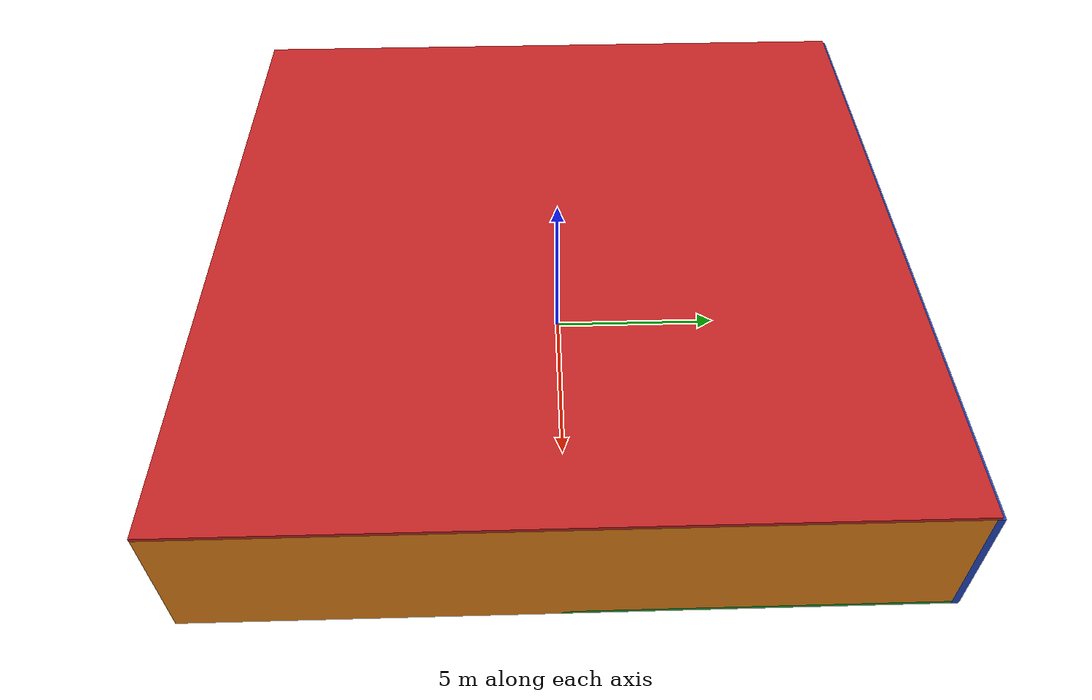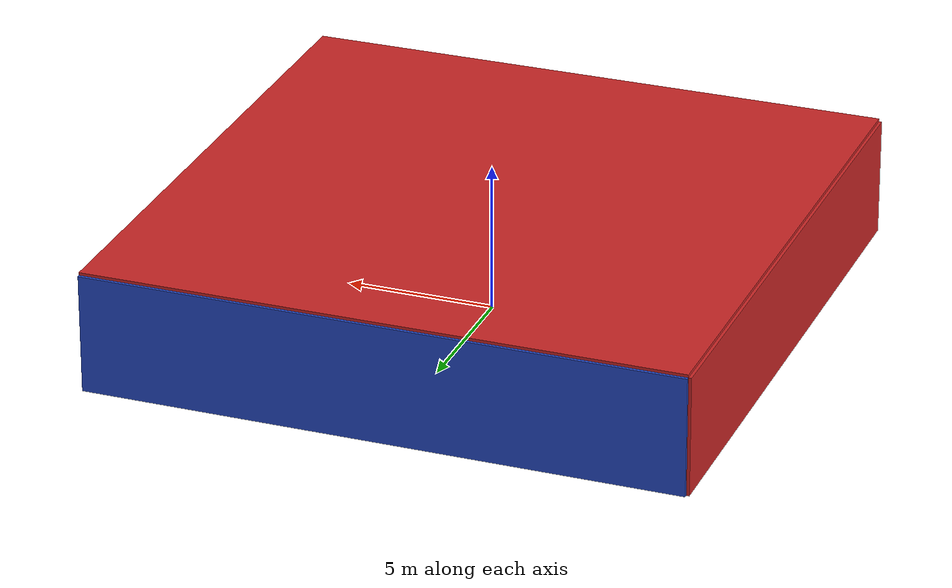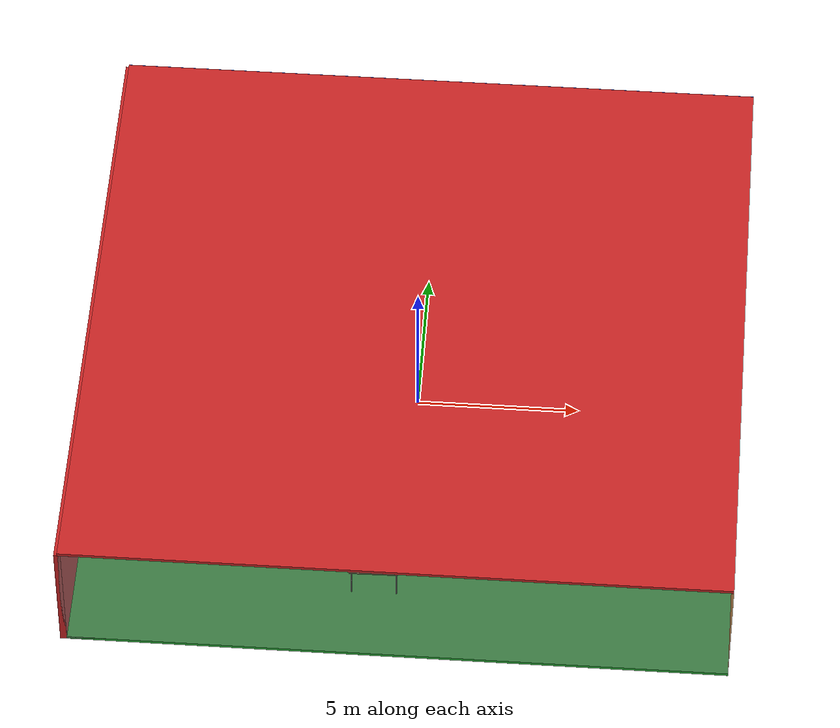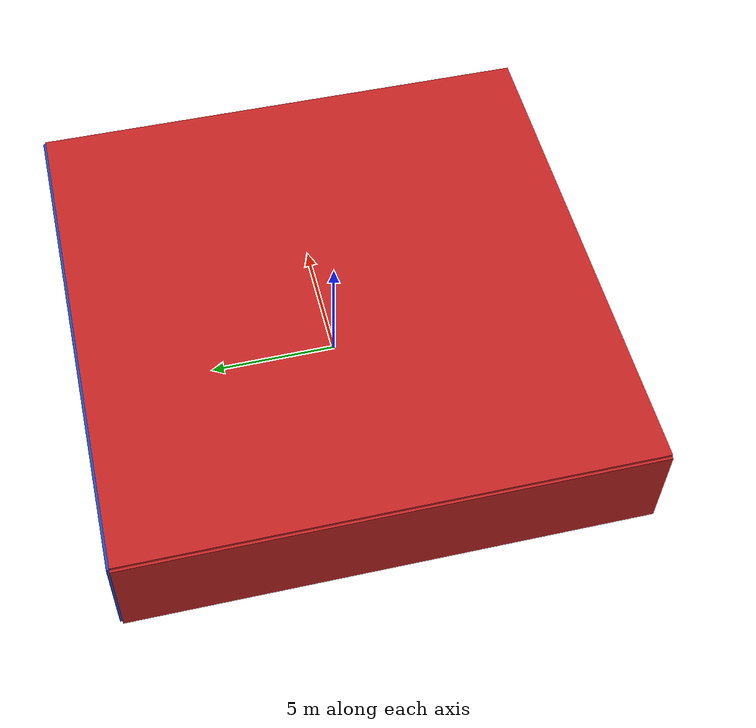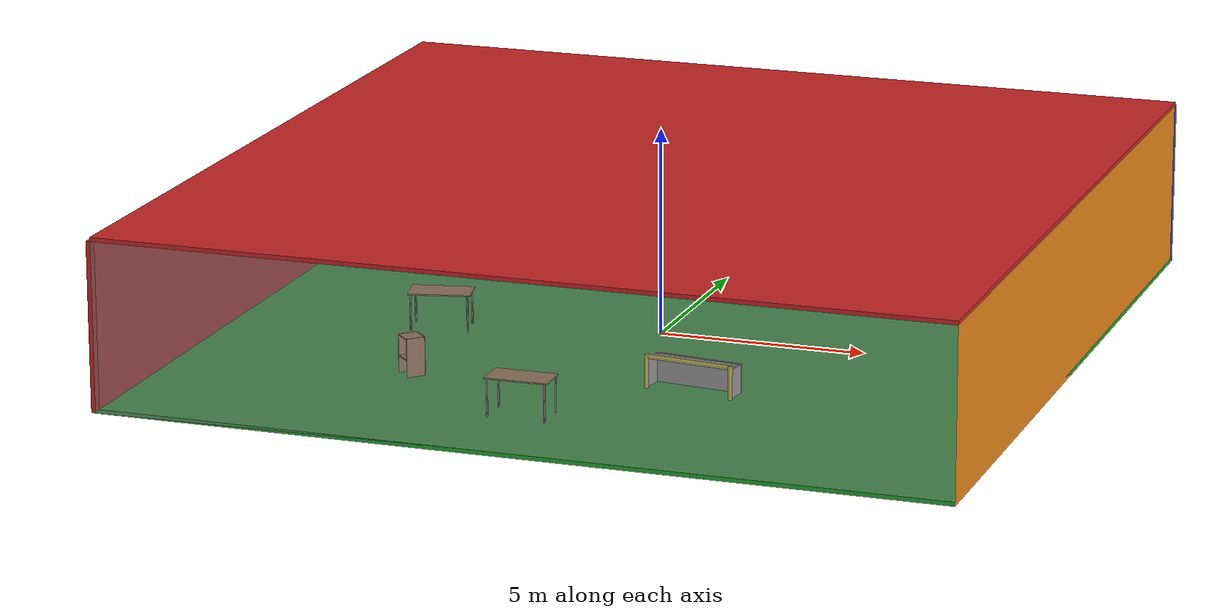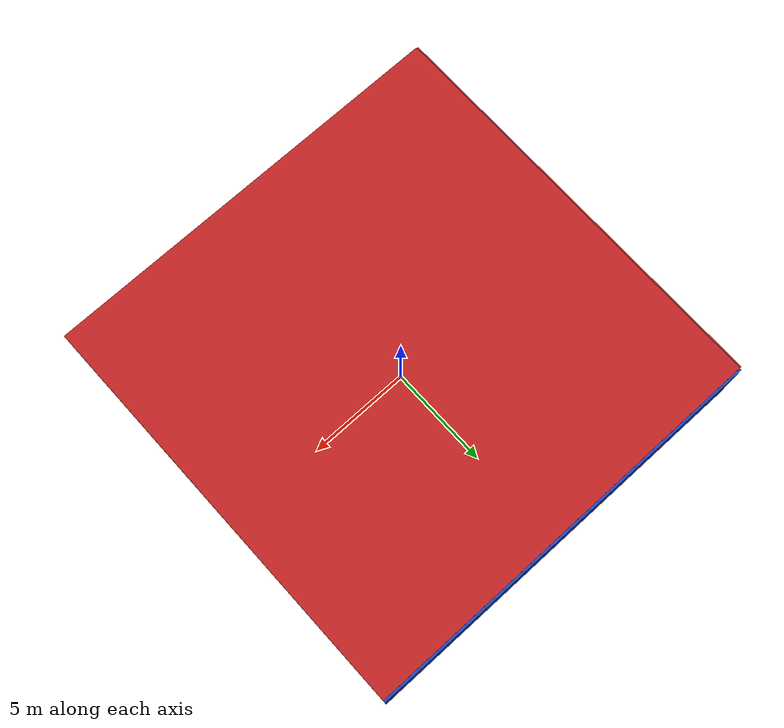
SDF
<sdf version="1.4">
 <world name="default">
  <physics type="ode">
   <max_step_size>0.001</max_step_size>
   <real_time_factor>1</real_time_factor>
   <real_time_update_rate>1000</real_time_update_rate>
   <gravity>0 0 -9.8</gravity>
  </physics>
  <scene><ambient>0.4 0.4 0.4 1</ambient><background>0.7 0.7 0.7 1</background><shadows>1</shadows></scene>
  <model name="Surrounding">
   <static>1</static>
   <link name="Ceiling">
    <collision name="Ceiling_Collision"><geometry><box><size>20 20 0.1</size></box></geometry></collision>
    <visual name="Ceiling_Visual">
     <geometry><box><size>20 20 0.1</size></box></geometry>
     <material>
      <script><uri>file://media/materials/scripts/gazebo.material</uri><name>Gazebo/Red</name></script>
     </material>
    </visual>
    <pose>0 0 4.05 0 0 0</pose>
   </link>
   <link name="Wall_South">
    <collision name="Wall_South_Collision">
     <geometry><box><size>20 0 4</size></box></geometry>
     <pose>0 0 2 0 -0 0</pose>
    </collision>
    <visual name="Wall_South_Visual">
     <pose>0 0 2 0 -0 0</pose>
     <geometry><box><size>20 0 4</size></box></geometry>
     <material>
      <script><uri>file://media/materials/scripts/gazebo.material</uri><name>Gazebo/GreyTransparent</name></script>
     </material>
    </visual>
    <velocity_decay><linear>0</linear><angular>0</angular></velocity_decay>
    <pose>0 -10 0 0 -0 0</pose>
   </link>
   <link name="Wall_East">
    <collision name="Wall_21_Collision">
     <geometry><box><size>20 0 4</size></box></geometry>
     <pose>0 0 2 0 -0 0</pose>
    </collision>
    <visual name="Wall_21_Visual">
     <pose>0 0 2 0 -0 0</pose>
     <geometry><box><size>20 0 4</size></box></geometry>
     <material>
      <script><uri>file://media/materials/scripts/gazebo.material</uri><name>Gazebo/Orange</name></script>
     </material>
    </visual>
    <velocity_decay><linear>0</linear><angular>0</angular></velocity_decay>
    <pose>10 0 0 0 -0 1.5708</pose>
   </link>
   <link name="Wall_North">
    <collision name="Wall_22_Collision">
     <geometry><box><size>20 0.2 4</size></box></geometry>
     <pose>0 0 2 0 -0 0</pose>
    </collision>
    <visual name="Wall_22_Visual">
     <pose>0 0 2 0 -0 0</pose>
     <geometry><box><size>20 0.2 4</size></box></geometry>
     <material>
      <script><uri>file://media/materials/scripts/gazebo.material</uri><name>Gazebo/Blue</name></script>
     </material>
    </visual>
    <velocity_decay><linear>0</linear><angular>0</angular></velocity_decay>
    <pose>0 10 0 0 -0 0</pose>
   </link>
   <link name="Wall_West">
    <collision name="Wall_23_Collision">
     <geometry><box><size>20 0.2 4</size></box></geometry>
     <pose>0 0 2 0 -0 0</pose>
    </collision>
    <visual name="Wall_23_Visual">
     <pose>0 0 2 0 -0 0</pose>
     <geometry><box><size>20 0.2 4</size></box></geometry>
     <material>
      <script><uri>file://media/materials/scripts/gazebo.material</uri><name>Gazebo/RedBright</name></script>
     </material>
    </visual>
    <velocity_decay><linear>0</linear><angular>0</angular></velocity_decay>
    <pose>-10 0 0 0 0 -1.5708</pose>
   </link>
   <link name="Ground_link">
    <collision name="collision">
     <pose>0 0 .05 0 -0 0</pose>
     <geometry><box><size>20 20 0.1</size></box></geometry>
    </collision>
    <visual name="visual">
     <pose>0 0 .05 0 -0 0</pose>
     <geometry><box><size>20 20 0.1</size></box></geometry>
     <material>
      <script><uri>file://media/materials/scripts/gazebo.material</uri><name>Gazebo/Green</name></script>
     </material>
    </visual>
   </link>
   <static>1</static>
  </model>
  <spherical_coordinates>
   <surface_model>EARTH_WGS84</surface_model>
   <latitude_deg>0</latitude_deg>
   <longitude_deg>0</longitude_deg>
   <elevation>0</elevation>
   <heading_deg>0</heading_deg>
  </spherical_coordinates>
  <light name="lightball_0" type="diffuse">
   <diffuse>0.8 0.8 0.8 1</diffuse>
   <specular>0.2 0.2 0.2 1</specular>
   <attenuation>
    <range>100</range>
    <constant>0.7</constant>
    <linear>0.01</linear>
    <quadratic>0.001</quadratic>
   </attenuation>
   <direction>-0.5 0.1 -0.9</direction>
   <pose>-1.06049637187 4.2129517359 3.67370612958 0 0 0</pose>
  </light>
  <light name="lightball_1" type="diffuse">
   <diffuse>0.8 0.8 0.8 1</diffuse>
   <specular>0.2 0.2 0.2 1</specular>
   <attenuation>
    <range>100</range>
    <constant>0.7</constant>
    <linear>0.01</linear>
    <quadratic>0.001</quadratic>
   </attenuation>
   <direction>-0.5 0.1 -0.9</direction>
   <pose>3.91762894163 3.46255819157 1.43675701207 0 0 0</pose>
  </light>
  <light name="lightball_2" type="diffuse">
   <diffuse>0.8 0.8 0.8 1</diffuse>
   <specular>0.2 0.2 0.2 1</specular>
   <attenuation>
    <range>100</range>
    <constant>0.7</constant>
    <linear>0.01</linear>
    <quadratic>0.001</quadratic>
   </attenuation>
   <direction>-0.5 0.1 -0.9</direction>
   <pose>2.37002000419 -9.66655316988 2.53620513323 0 0 0</pose>
  </light>
  <light name="lightball_3" type="diffuse">
   <diffuse>0.8 0.8 0.8 1</diffuse>
   <specular>0.2 0.2 0.2 1</specular>
   <attenuation>
    <range>100</range>
    <constant>0.7</constant>
    <linear>0.01</linear>
    <quadratic>0.001</quadratic>
   </attenuation>
   <direction>-0.5 0.1 -0.9</direction>
   <pose>2.54263533433 1.15956792856 2.69504424068 0 0 0</pose>
  </light>
  <light name="lightball_4" type="diffuse">
   <diffuse>0.8 0.8 0.8 1</diffuse>
   <specular>0.2 0.2 0.2 1</specular>
   <attenuation>
    <range>100</range>
    <constant>0.7</constant>
    <linear>0.01</linear>
    <quadratic>0.001</quadratic>
   </attenuation>
   <direction>-0.5 0.1 -0.9</direction>
   <pose>1.9100178373 5.59507038063 3.75298920746 0 0 0</pose>
  </light>
  <include><uri>model://table</uri><pose>-8.05428654168 4.53445139938 0 0 0 0.880229814421</pose></include>
  <include><uri>model://cabinet</uri><pose>-4.27938245656 -5.20271489371 0 0 0 0.785801343409</pose></include>
  <include><uri>model://table</uri><pose>-4.99760868514 -1.49757155663 0 0 0 0.216594897298</pose></include>
  <include><uri>model://table</uri><pose>-4.57061350556 4.43397801988 0 0 0 1.70573942796</pose></include>
  <include><uri>model://table</uri><pose>-0.808030982085 -7.28945258994 0 0 0 0.0152420349703</pose></include>
  <include>
   <uri>model://robocup_3Dsim_goal</uri>
   <pose>2.21566410869 -4.59109419714 0 0 0 1.44965327955</pose>
  </include>
  <include>
   <uri>model://robocup_3Dsim_goal</uri>
   <pose>1.5586727339 3.74808497328 0 0 0 0.527945425515</pose>
  </include>
  <include>
   <uri>model://textured_shapes</uri>
   <pose>2.11653762742 6.8270001914 0 0 0 0.312495656276</pose>
  </include>
  <include><uri>model://cabinet</uri><pose>8.27889528543 -1.92933377153 0 0 0 1.19653381378</pose></include>
 </world>
</sdf>

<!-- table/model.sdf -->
<sdf version="1.5">
  <model name="table">
    <static>true</static>
    <link name="link">
      <collision name="surface">
        <pose>0 0 1.0 0 0 0</pose>
        <geometry>
          <box>
            <size>1.5 0.8 0.03</size>
          </box>
        </geometry>
        <surface>
          <friction>
            <ode>
              <mu>0.6</mu>
              <mu2>0.6</mu2>
            </ode>
          </friction>
        </surface>
      </collision>
      <visual name="visual1">
        <pose>0 0 1.0 0 0 0</pose>
        <geometry>
          <box>
            <size>1.5 0.8 0.03</size>
          </box>
        </geometry>
        <material>
          <script>
            <uri>model://media/materials/scripts/gazebo.material</uri>
            <name>Gazebo/Wood</name>
          </script>
        </material>
      </visual>
      <collision name="front_left_leg">
        <pose>0.68 0.38 0.5 0 0 0</pose>
        <geometry>
          <cylinder>
            <radius>0.02</radius>
            <length>1.0</length>
          </cylinder>
        </geometry>
      </collision>
      <visual name="front_left_leg">
        <pose>0.68 0.38 0.5 0 0 0</pose>
        <geometry>
          <cylinder>
            <radius>0.02</radius>
            <length>1.0</length>
          </cylinder>
        </geometry>
        <material>
          <script>
            <uri>model://media/materials/scripts/gazebo.material</uri>
            <name>Gazebo/Grey</name>
          </script>
        </material>
      </visual>
      <collision name="front_right_leg">
        <pose>0.68 -0.38 0.5 0 0 0</pose>
        <geometry>
          <cylinder>
            <radius>0.02</radius>
            <length>1.0</length>
          </cylinder>
        </geometry>
      </collision>
      <visual name="front_right_leg">
        <pose>0.68 -0.38 0.5 0 0 0</pose>
        <geometry>
          <cylinder>
            <radius>0.02</radius>
            <length>1.0</length>
          </cylinder>
        </geometry>
        <material>
          <script>
            <uri>model://media/materials/scripts/gazebo.material</uri>
            <name>Gazebo/Grey</name>
          </script>
        </material>
      </visual>
      <collision name="back_right_leg">
        <pose>-0.68 -0.38 0.5 0 0 0</pose>
        <geometry>
          <cylinder>
            <radius>0.02</radius>
            <length>1.0</length>
          </cylinder>
        </geometry>
      </collision>
      <visual name="back_right_leg">
        <pose>-0.68 -0.38 0.5 0 0 0</pose>
        <geometry>
          <cylinder>
            <radius>0.02</radius>
            <length>1.0</length>
          </cylinder>
        </geometry>
        <material>
          <script>
            <uri>model://media/materials/scripts/gazebo.material</uri>
            <name>Gazebo/Grey</name>
          </script>
        </material>
      </visual>
      <collision name="back_left_leg">
        <pose>-0.68 0.38 0.5 0 0 0</pose>
        <geometry>
          <cylinder>
            <radius>0.02</radius>
            <length>1.0</length>
          </cylinder>
        </geometry>
      </collision>
      <visual name="back_left_leg">
        <pose>-0.68 0.38 0.5 0 0 0</pose>
        <geometry>
          <cylinder>
            <radius>0.02</radius>
            <length>1.0</length>
          </cylinder>
        </geometry>
        <material>
          <script>
            <uri>model://media/materials/scripts/gazebo.material</uri>
            <name>Gazebo/Grey</name>
          </script>
        </material>
      </visual>
    </link>
  </model>
</sdf>

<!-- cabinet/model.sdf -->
<sdf version="1.5">
  <model name="cabinet">
    <static>true</static>
    <link name="cabinet_bottom_plate">
      <inertial>
        <pose>0 0 -1 0 0 0</pose>
        <inertia>
          <ixx>2.050000</ixx>
          <ixy>0</ixy>
          <ixz>0</ixz>
          <iyy>2.050000</iyy>
          <iyz>0</iyz>
          <izz>2.050000</izz>
        </inertia>
        <mass>25.000000</mass>
      </inertial>
      <collision name="cabinet_bottom_plate_geom">
        <pose>0 0 0.010000 0 0 0</pose>
        <geometry>
          <box>
            <size>0.450000 0.450000 0.020000</size>
          </box>
        </geometry>
      </collision>
      <visual name="cabinet_bottom_plate_geom_visual">
        <pose>0 0 0.010000 0 0 0</pose>
        <geometry>
          <box>
            <size>0.450000 0.450000 0.020000</size>
          </box>
        </geometry>
        <material>
          <script>
            <uri>model://media/materials/scripts/gazebo.material</uri>
            <name>Gazebo/Wood</name>
          </script>
        </material>
      </visual>
      <collision name="cabinet_bottom_plate_geom_cabinet_back_plate">
        <pose>0.235000 0 0.510000 0 0 0</pose>
        <geometry>
          <box>
            <size>0.020000 0.450000 1.020000</size>
          </box>
        </geometry>
      </collision>
      <visual name="cabinet_bottom_plate_geom_cabinet_back_plate_visual">
        <pose>0.235000 0 0.510000 0 0 0</pose>
        <geometry>
          <box>
            <size>0.020000 0.450000 1.020000</size>
          </box>
        </geometry>
        <material>
          <script>
            <uri>model://media/materials/scripts/gazebo.material</uri>
            <name>Gazebo/Wood</name>
          </script>
        </material>
      </visual>
      <collision name="cabinet_bottom_plate_geom_cabinet_left_plate">
        <pose>0 0.235000 0.510000 0 0 0</pose>
        <geometry>
          <box>
            <size>0.450000 0.020000 1.020000</size>
          </box>
        </geometry>
      </collision>
      <visual name="cabinet_bottom_plate_geom_cabinet_left_plate_visual">
        <pose>0 0.235000 0.510000 0 0 0</pose>
        <geometry>
          <box>
            <size>0.450000 0.020000 1.020000</size>
          </box>
        </geometry>
        <material>
          <script>
            <uri>model://media/materials/scripts/gazebo.material</uri>
            <name>Gazebo/Wood</name>
          </script>
        </material>
      </visual>
      <collision name="cabinet_bottom_plate_geom_cabinet_middle_plate">
        <pose>0 0 0.510000 0 0 0</pose>
        <geometry>
          <box>
            <size>0.450000 0.450000 0.020000</size>
          </box>
        </geometry>
      </collision>
      <visual name="cabinet_bottom_plate_geom_cabinet_middle_plate_visual">
        <pose>0 0 0.510000 0 0 0</pose>
        <geometry>
          <box>
            <size>0.450000 0.450000 0.020000</size>
          </box>
        </geometry>
        <material>
          <script>
            <uri>model://media/materials/scripts/gazebo.material</uri>
            <name>Gazebo/Wood</name>
          </script>
        </material>
      </visual>
      <collision name="cabinet_bottom_plate_geom_cabinet_right_plate">
        <pose>0 -0.235000 0.510000 0 0 0</pose>
        <geometry>
          <box>
            <size>0.450000 0.020000 1.020000</size>
          </box>
        </geometry>
      </collision>
      <visual name="cabinet_bottom_plate_geom_cabinet_right_plate_visual">
        <pose>0 -0.235000 0.510000 0 0 0</pose>
        <geometry>
          <box>
            <size>0.450000 0.020000 1.020000</size>
          </box>
        </geometry>
        <material>
          <script>
            <uri>model://media/materials/scripts/gazebo.material</uri>
            <name>Gazebo/Wood</name>
          </script>
        </material>
      </visual>
      <collision name="cabinet_bottom_plate_geom_cabinet_top_plate">
        <pose>0 0 1.010000 0 0 0</pose>
        <geometry>
          <box>
            <size>0.450000 0.450000 0.020000</size>
          </box>
        </geometry>
      </collision>
      <visual name="cabinet_bottom_plate_geom_cabinet_top_plate_visual">
        <pose>0 0 1.010000 0 0 0</pose>
        <geometry>
          <box>
            <size>0.450000 0.450000 0.020000</size>
          </box>
        </geometry>
        <material>
          <script>
            <uri>model://media/materials/scripts/gazebo.material</uri>
            <name>Gazebo/Wood</name>
          </script>
        </material>
      </visual>
    </link>
  </model>
</sdf>

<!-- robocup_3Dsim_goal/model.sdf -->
<sdf version="1.5">
  <model name="robocup_3d_goal">
    <static>true</static>
    <link name="left_post">
      <pose>0 1.05 0.45 0 0 0</pose>
      <collision name="collision">
        <geometry>
          <cylinder>
            <radius>0.05</radius>
            <length>0.9</length>
          </cylinder>
        </geometry>
      </collision>
      <visual name="visual">
        <geometry>
          <cylinder>
            <radius>0.05</radius>
            <length>0.9</length>
          </cylinder>
        </geometry>
        <material>
          <script>
            <uri>file://media/materials/scripts/gazebo.material</uri>
            <name>Gazebo/ZincYellow</name>
          </script>
        </material>
      </visual>
    </link>
    <link name="left_support_horiz_lower">
      <pose>0.30 1.05 0.01 0 0 0</pose>
      <collision name="collision">
        <geometry>
          <box>
            <size>0.50 0.02 0.02</size>
          </box>
        </geometry>
      </collision>
      <visual name="visual">
        <geometry>
          <box>
            <size>0.50 0.02 0.02</size>
          </box>
        </geometry>
        <material>
          <script>
            <uri>file://media/materials/scripts/gazebo.material</uri>
            <name>Gazebo/White</name>
          </script>
        </material>
      </visual>
    </link>
    <link name="left_support_horiz_upper">
      <pose>0.30 1.05 0.79 0 0 0</pose>
      <collision name="collision">
        <geometry>
          <box>
            <size>0.50 0.02 0.02</size>
          </box>
        </geometry>
      </collision>
      <visual name="visual">
        <geometry>
          <box>
            <size>0.50 0.02 0.02</size>
          </box>
        </geometry>
        <material>
          <script>
            <uri>file://media/materials/scripts/gazebo.material</uri>
            <name>Gazebo/White</name>
          </script>
        </material>
      </visual>
    </link>
    <link name="left_support_vertical">
      <pose>0.56 1.05 0.4 0 1.5708 0</pose>
      <collision name="collision">
        <geometry>
          <box>
            <size>0.80 0.02 0.02</size>
          </box>
        </geometry>
      </collision>
      <visual name="visual">
        <geometry>
          <box>
            <size>0.80 0.02 0.02</size>
          </box>
        </geometry>
        <material>
          <script>
            <uri>file://media/materials/scripts/gazebo.material</uri>
            <name>Gazebo/White</name>
          </script>
        </material>
      </visual>
    </link>
    <link name="right_support_horiz_lower">
      <pose>0.30 -1.05 0.01 0 0 0</pose>
      <collision name="collision">
        <geometry>
          <box>
            <size>0.50 0.02 0.02</size>
          </box>
        </geometry>
      </collision>
      <visual name="visual">
        <geometry>
          <box>
            <size>0.50 0.02 0.02</size>
          </box>
        </geometry>
        <material>
          <script>
            <uri>file://media/materials/scripts/gazebo.material</uri>
            <name>Gazebo/White</name>
          </script>
        </material>
      </visual>
    </link>
    <link name="right_support_horiz_upper">
      <pose>0.30 -1.05 0.79 0 0 0</pose>
      <collision name="collision">
        <geometry>
          <box>
            <size>0.50 0.02 0.02</size>
          </box>
        </geometry>
      </collision>
      <visual name="visual">
        <geometry>
          <box>
            <size>0.50 0.02 0.02</size>
          </box>
        </geometry>
        <material>
          <script>
            <uri>file://media/materials/scripts/gazebo.material</uri>
            <name>Gazebo/White</name>
          </script>
        </material>
      </visual>
    </link>
    <link name="right_support_vertical">
      <pose>0.56 -1.05 0.4 0 1.5708 0</pose>
      <collision name="collision">
        <geometry>
          <box>
            <size>0.80 0.02 0.02</size>
          </box>
        </geometry>
      </collision>
      <visual name="visual">
        <geometry>
          <box>
            <size>0.80 0.02 0.02</size>
          </box>
        </geometry>
        <material>
          <script>
            <uri>file://media/materials/scripts/gazebo.material</uri>
            <name>Gazebo/White</name>
          </script>
        </material>
      </visual>
    </link>
    <link name="center_support_horiz_lower">
      <pose>0.56 0 0.01 0 1.5708 0</pose>
      <collision name="collision">
        <geometry>
          <box>
            <size>0.02 2.08 0.02</size>
          </box>
        </geometry>
      </collision>
      <visual name="visual">
        <geometry>
          <box>
            <size>0.02 2.08 0.02</size>
          </box>
        </geometry>
        <material>
          <script>
            <uri>file://media/materials/scripts/gazebo.material</uri>
            <name>Gazebo/White</name>
          </script>
        </material>
      </visual>
    </link>
    <link name="center_support_horiz_upper">
      <pose>0.56 0 0.79 0 1.5708 0</pose>
      <collision name="collision">
        <geometry>
          <box>
            <size>0.02 2.08 0.02</size>
          </box>
        </geometry>
      </collision>
      <visual name="visual">
        <geometry>
          <box>
            <size>0.02 2.08 0.02</size>
          </box>
        </geometry>
        <material>
          <script>
            <uri>file://media/materials/scripts/gazebo.material</uri>
            <name>Gazebo/White</name>
          </script>
        </material>
      </visual>
    </link>
    <link name="right_post">
      <pose>0 -1.05 0.45 0 0 0</pose>
      <collision name="collision">
        <geometry>
          <cylinder>
            <radius>0.05</radius>
            <length>0.9</length>
          </cylinder>
        </geometry>
      </collision>
      <visual name="visual">
        <geometry>
          <cylinder>
            <radius>0.05</radius>
            <length>0.9</length>
          </cylinder>
        </geometry>
        <material>
          <script>
            <uri>file://media/materials/scripts/gazebo.material</uri>
            <name>Gazebo/ZincYellow</name>
          </script>
        </material>
      </visual>
    </link>
    <link name="crossbar">
      <pose>0 0 0.85 1.57 1.57 0</pose>
      <collision name="collision">
        <geometry>
          <cylinder>
            <radius>0.05</radius>
            <length>2.0</length>
          </cylinder>
        </geometry>
      </collision>
      <visual name="visual">
        <geometry>
          <cylinder>
            <radius>0.05</radius>
            <length>2.0</length>
          </cylinder>
        </geometry>
        <material>
          <script>
            <uri>file://media/materials/scripts/gazebo.material</uri>
            <name>Gazebo/ZincYellow</name>
          </script>
        </material>
      </visual>
    </link>
    <link name="center_net">
      <pose>0.56 0 0.40 0 0 0</pose>
      <collision name="collision">
        <geometry>
          <box>
            <size>0.01 2.1 0.80</size>
          </box>
        </geometry>
      </collision>
      <visual name="visual">
        <geometry>
          <box>
            <size>0.01 2.1 0.80</size>
          </box>
        </geometry>
        <material>
          <script>
            <uri>model://../model_source/models/robocup09_spl_field/materials/scripts/</uri>
            <uri>model://../model_source/models/robocup09_spl_field/materials/textures/</uri>
            <name>RoboCup/Net</name>
          </script>
        </material>
      </visual>
    </link>
    <link name="left_net">
      <pose>0.30 1.05 0.40 0 0 0</pose>
      <collision name="collision">
        <geometry>
          <box>
            <size>0.50 0.01 0.76</size>
          </box>
        </geometry>
      </collision>
      <visual name="visual">
        <geometry>
          <box>
            <size>0.50 0.01 0.76</size>
          </box>
        </geometry>
        <material>
          <script>
            <uri>model://../model_source/models/robocup09_spl_field/materials/scripts/</uri>
            <uri>model://../model_source/models/robocup09_spl_field/materials/textures/</uri>
            <name>RoboCup/Net</name>
          </script>
        </material>
      </visual>
    </link>
    <link name="right_net">
      <pose>0.30 -1.05 0.40 0 0 0</pose>
      <collision name="collision">
        <geometry>
          <box>
            <size>0.50 0.01 0.76</size>
          </box>
        </geometry>
      </collision>
      <visual name="visual">
        <geometry>
          <box>
            <size>0.50 0.01 0.76</size>
          </box>
        </geometry>
        <material>
          <script>
            <uri>model://../model_source/models/robocup09_spl_field/materials/scripts/</uri>
            <uri>model://../model_source/models/robocup09_spl_field/materials/textures/</uri>
            <name>RoboCup/Net</name>
          </script>
        </material>
      </visual>
    </link>
  </model>
</sdf>

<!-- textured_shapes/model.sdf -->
<sdf version="1.6">
  <model name="textured_shapes">
    <pose>0 0 0.5 0 0 0</pose>
    <link name="box">
      <pose>0 -1.5 0 0 0 0</pose>
      <collision name="collision">
        <geometry>
          <box>
            <size>1 1 1</size>
          </box>
        </geometry>
      </collision>
      <visual name="visual">
        <geometry>
          <box>
            <size>1 1 1</size>
          </box>
        </geometry>
        <material>
          <script>
            <uri>model://../model_source/models/textured_shapes/materials/scripts</uri>
            <uri>model://../model_source/models/textured_shapes/materials/textures</uri>
            <name>TexturedShape/Squares</name>
          </script>
        </material>
      </visual>
    </link>
    <link name="sphere">
      <collision name="collision">
        <geometry>
          <sphere>
            <radius>0.5</radius>
          </sphere>
        </geometry>
      </collision>
      <visual name="visual">
        <geometry>
          <sphere>
            <radius>0.5</radius>
          </sphere>
        </geometry>
        <material>
          <script>
            <uri>model://../model_source/models/textured_shapes/materials/scripts</uri>
            <uri>model://../model_source/models/textured_shapes/materials/textures</uri>
            <name>TexturedShape/Squares</name>
          </script>
        </material>
      </visual>
    </link>
    <link name="cylinder">
      <pose>0 1.5 0 0 0 0</pose>
      <collision name="collision">
        <geometry>
          <cylinder>
            <radius>0.5</radius>
            <length>1</length>
          </cylinder>
        </geometry>
      </collision>
      <visual name="visual">
        <geometry>
          <cylinder>
            <radius>0.5</radius>
            <length>1</length>
          </cylinder>
        </geometry>
        <material>
          <script>
            <uri>model://../model_source/models/textured_shapes/materials/scripts</uri>
            <uri>model://../model_source/models/textured_shapes/materials/textures</uri>
            <name>TexturedShape/Squares</name>
          </script>
        </material>
      </visual>
    </link>
  </model>
</sdf>
